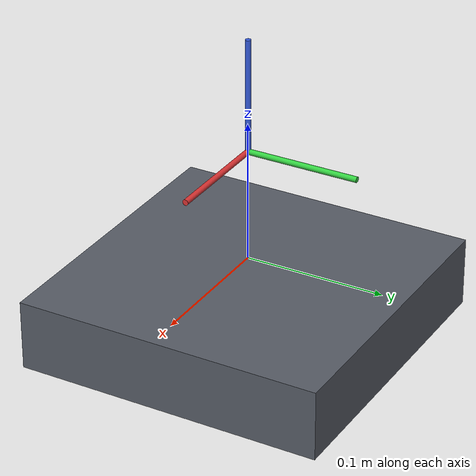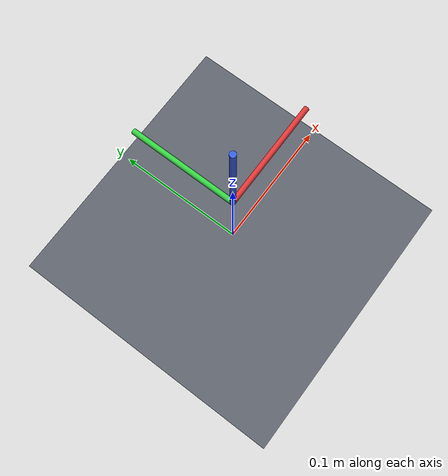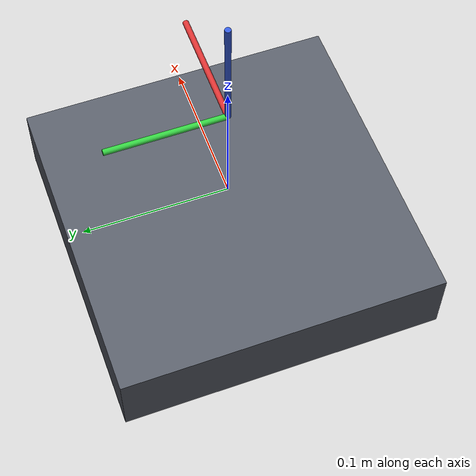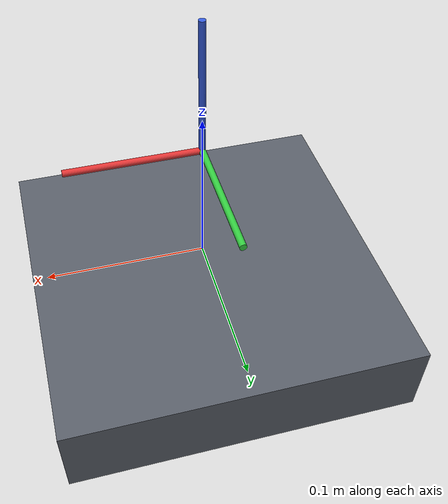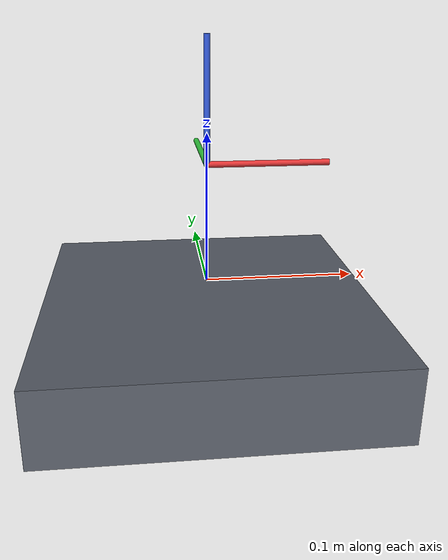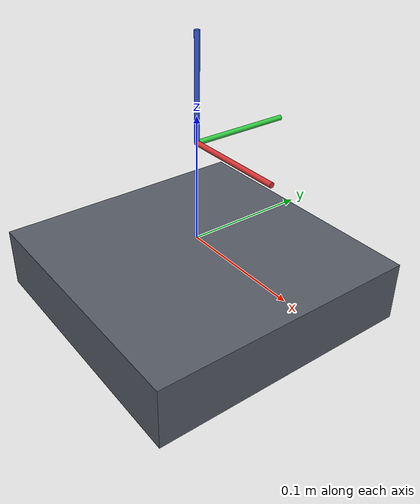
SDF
<?xml version="1.0" ?>
<!--
  T3 — long-hold stability test world.
  A static mount and visual reference frame are provided; the runner applies the
  sustained load and records a time series.
-->
<sdf version="1.6">
  <world name="tactile_t3_stability">
    <scene>
      <ambient>0.74 0.74 0.74 1</ambient>
      <background>0.93 0.94 0.97 1</background>
    </scene>

    <include>
      <uri>model://sun</uri>
    </include>

    <model name="t3_mount_base">
      <static>true</static>
      <pose>0 0 -0.035 0 0 0</pose>
      <link name="link">
        <collision name="collision">
          <geometry>
            <box>
              <size>0.22 0.22 0.05</size>
            </box>
          </geometry>
        </collision>
        <visual name="visual">
          <geometry>
            <box>
              <size>0.22 0.22 0.05</size>
            </box>
          </geometry>
          <material>
            <ambient>0.34 0.36 0.40 1</ambient>
            <diffuse>0.34 0.36 0.40 1</diffuse>
          </material>
        </visual>
      </link>
    </model>

    <model name="t3_reference_frame">
      <static>true</static>
      <pose>0 0 0.08 0 0 0</pose>
      <link name="link">
        <visual name="x_axis">
          <pose>0.04 0 0 0 1.57079632679 0</pose>
          <geometry><cylinder><radius>0.002</radius><length>0.08</length></cylinder></geometry>
          <material><ambient>0.85 0.20 0.20 1</ambient><diffuse>0.85 0.20 0.20 1</diffuse></material>
        </visual>
        <visual name="y_axis">
          <pose>0 0.04 0 1.57079632679 0 0</pose>
          <geometry><cylinder><radius>0.002</radius><length>0.08</length></cylinder></geometry>
          <material><ambient>0.20 0.80 0.25 1</ambient><diffuse>0.20 0.80 0.25 1</diffuse></material>
        </visual>
        <visual name="z_axis">
          <pose>0 0 0.04 0 0 0</pose>
          <geometry><cylinder><radius>0.002</radius><length>0.08</length></cylinder></geometry>
          <material><ambient>0.20 0.35 0.85 1</ambient><diffuse>0.20 0.35 0.85 1</diffuse></material>
        </visual>
      </link>
    </model>
  </world>
</sdf>
